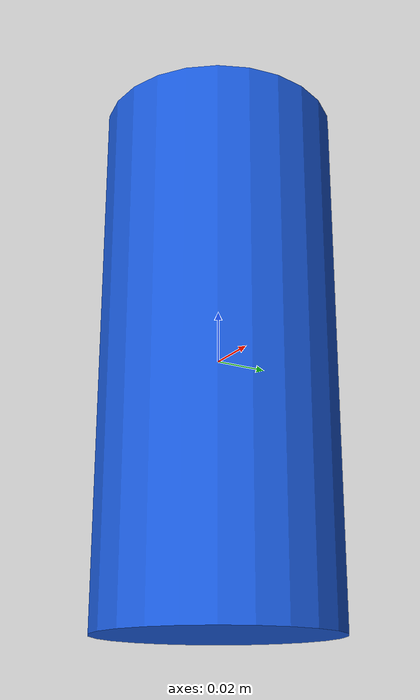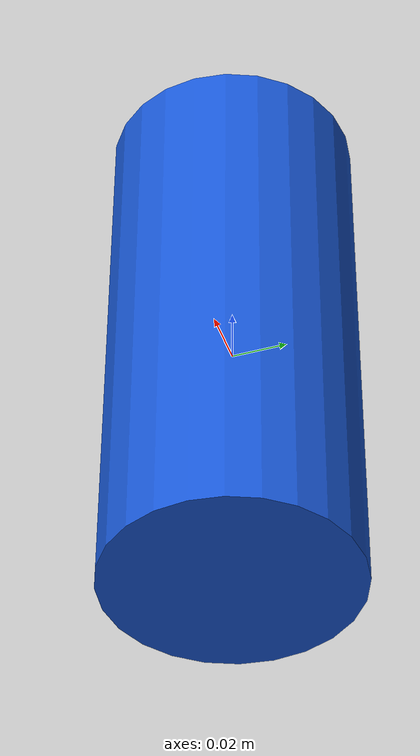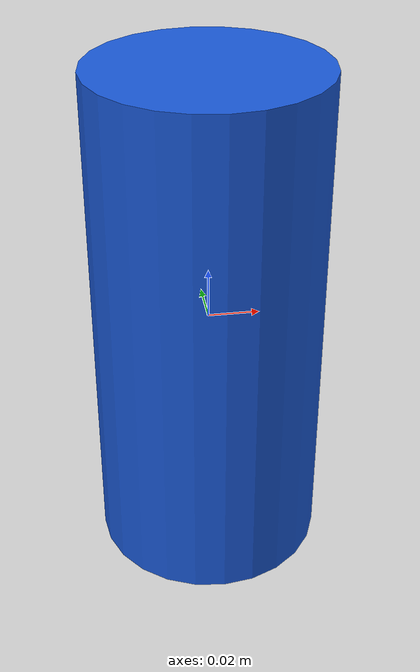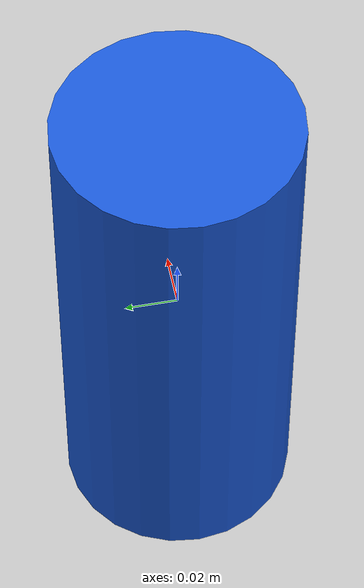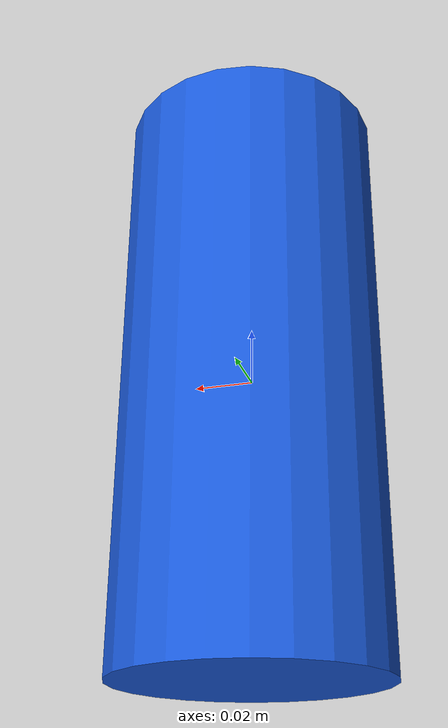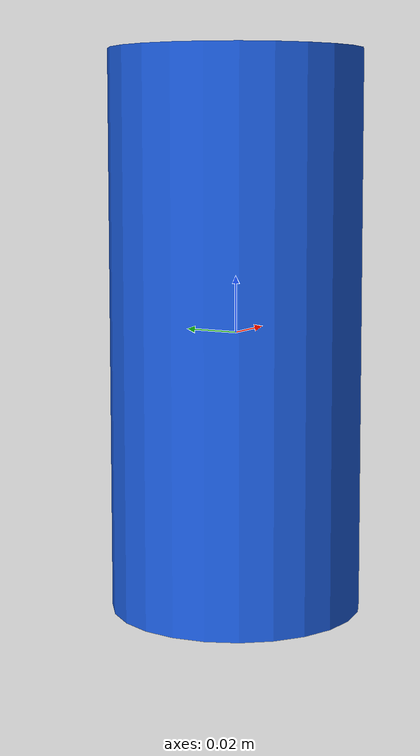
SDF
<?xml version="1.0"?>
<sdf version="1.9">
  <model name="can">
    <link name="link">
      <velocity_decay>
      <linear>0.0</linear>
      <angular>2.0</angular>
      </velocity_decay>
      <inertial><mass>0.35</mass>
        <inertia><ixx>1.343854e-03</ixx><iyy>1.343854e-03</iyy><izz>3.543750e-04</izz>
          <ixy>0</ixy><ixz>0</ixz><iyz>0</iyz></inertia>
      </inertial>
      <collision name="col">
        <geometry><cylinder><radius>0.045</radius><length>0.2</length></cylinder></geometry>
        <surface>
          <friction><ode><mu>1.5</mu><mu2>1.5</mu2></ode></friction>
          <contact><ode><soft_cfm>0.001</soft_cfm><soft_erp>0.2</soft_erp>
            <kp>1e6</kp><kd>100</kd></ode></contact>
        </surface>
      </collision>
      <visual name="vis">
        <geometry><cylinder><radius>0.045</radius><length>0.2</length></cylinder></geometry>
        <material><ambient>0.10 0.35 0.85 1</ambient><diffuse>0.10 0.35 0.85 1</diffuse>
          <specular>0.3 0.3 0.3 1</specular></material>
      </visual>
    </link>
    <plugin filename="gz-sim-pose-publisher-system"
            name="gz::sim::systems::PosePublisher">
      <publish_link_pose>false</publish_link_pose>
      <publish_visual_pose>false</publish_visual_pose>
      <publish_collision_pose>false</publish_collision_pose>
      <publish_sensor_pose>false</publish_sensor_pose>
      <publish_nested_model_pose>false</publish_nested_model_pose>
      <!-- the model pose, in the world frame - exactly what verification needs -->
      <publish_model_pose>true</publish_model_pose>
      <!-- one plain Pose, not a Pose_V, so the bridge conversion is the simplest one -->
      <use_pose_vector_msg>false</use_pose_vector_msg>
      <static_publisher>false</static_publisher>
      <update_frequency>20</update_frequency>
    </plugin>
  </model>
</sdf>
